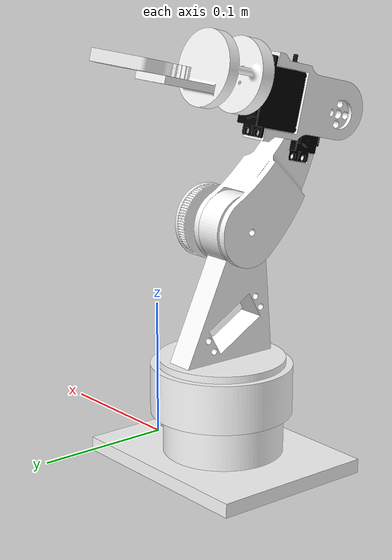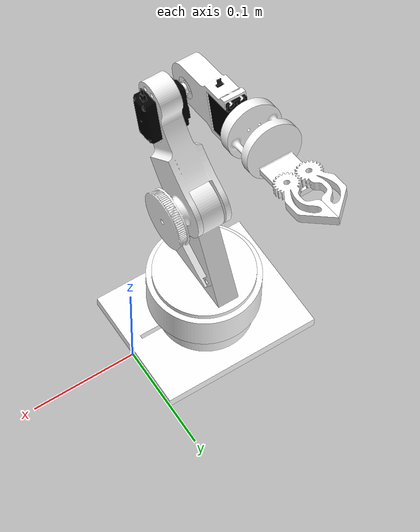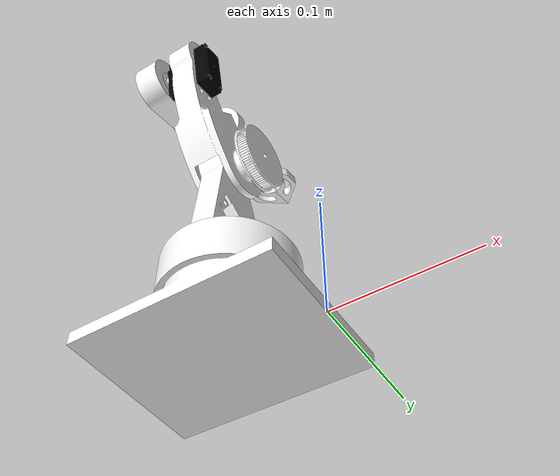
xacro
<?xml version="1.0" ?>
<robot name="picka" xmlns:xacro="http://www.ros.org/wiki/xacro">

<xacro:include filename="$(find picka_description)/urdf/materials.xacro" />
<xacro:include filename="$(find picka_description)/urdf/picka.ros2control" />
<xacro:include filename="$(find picka_description)/urdf/picka.gazebo" />

<!-- Gazebo treats this root link as the fixed mounting frame. -->
<link name="world"/>

<link name="base_link">
  <inertial>
    <origin xyz="-0.07600828126224177 -1.1028484547273465e-17 0.030513561198824268" rpy="0 0 0"/>
    <mass value="1.6184302970897686"/>
    <inertia ixx="0.002199" iyy="0.003083" izz="0.004833" ixy="-0.0" iyz="-0.0" ixz="-7e-06"/>
  </inertial>
  <visual>
    <origin xyz="0 0 0" rpy="0 0 0"/>
    <geometry>
      <mesh filename="package://picka_description/meshes/base_link.stl" scale="0.001 0.001 0.001"/>
    </geometry>
    <material name="white"/>
  </visual>
  <collision>
    <origin xyz="-0.075000 0 0.044055" rpy="0 0 0"/>
    <geometry>
      <box size="0.150000 0.120000 0.048110"/>
    </geometry>
  </collision>
</link>

<link name="stepper_1">
  <inertial>
    <origin xyz="0.00013214863232474672 2.2369005281418757e-08 0.0237707738780129" rpy="0 0 0"/>
    <mass value="0.640145595765002"/>
    <inertia ixx="0.000213" iyy="0.000214" izz="0.000178" ixy="-0.0" iyz="-0.0" ixz="2e-06"/>
  </inertial>
  <visual>
    <origin xyz="0.073 -0.0 -0.0211" rpy="0 0 0"/>
    <geometry>
      <mesh filename="package://picka_description/meshes/stepper_1.stl" scale="0.001 0.001 0.001"/>
    </geometry>
    <material name="black"/>
  </visual>
  <collision>
    <origin xyz="0.003100 0 0.033750" rpy="0 0 0"/>
    <geometry>
      <box size="0.048400 0.042200 0.067500"/>
    </geometry>
  </collision>
</link>

<link name="shoulder_1">
  <inertial>
    <origin xyz="-3.509113913983952e-05 -0.006280453652184013 0.0452397185954387" rpy="0 0 0"/>
    <mass value="0.9843584714949085"/>
    <inertia ixx="0.001813" iyy="0.001608" izz="0.000505" ixy="0.0" iyz="0.000183" ixz="-1e-06"/>
  </inertial>
  <visual>
    <origin xyz="0.073 -0.0 -0.0936" rpy="0 0 0"/>
    <geometry>
      <mesh filename="package://picka_description/meshes/shoulder_1.stl" scale="0.001 0.001 0.001"/>
    </geometry>
    <material name="white"/>
  </visual>
  <collision>
    <origin xyz="0 0 0.060000" rpy="0 0 0"/>
    <geometry>
      <box size="0.090000 0.089945 0.119999"/>
    </geometry>
  </collision>
</link>

<link name="backarm_1">
  <inertial>
    <origin xyz="-0.0068261814156114625 -0.023017959996843865 0.024155379857349113" rpy="0 0 0"/>
    <mass value="1.4765773134392393"/>
    <inertia ixx="0.001881" iyy="0.001407" izz="0.001004" ixy="-0.000139" iyz="0.000657" ixz="0.000145"/>
  </inertial>
  <visual>
    <origin xyz="0.063 0.012153 -0.1886" rpy="0 0 0"/>
    <geometry>
      <mesh filename="package://picka_description/meshes/backarm_1.stl" scale="0.001 0.001 0.001"/>
    </geometry>
    <material name="white"/>
  </visual>
  <collision>
    <origin xyz="-0.001363 -0.023909 0.036920" rpy="0 0 0"/>
    <geometry>
      <box size="0.051274 0.100254 0.126103"/>
    </geometry>
  </collision>
</link>

<link name="forearm_servo_1">
  <inertial>
    <origin xyz="0.07542497257237987 0.0024564923108638115 -0.19079005842647173" rpy="0 0 0"/>
    <mass value="0.24393896928790093"/>
    <inertia ixx="4.2e-05" iyy="6.2e-05" izz="3.9e-05" ixy="0.0" iyz="6e-06" ixz="0.0"/>
  </inertial>
  <visual>
    <origin xyz="0.148 0.067592 -0.448173" rpy="0 0 0"/>
    <geometry>
      <mesh filename="package://picka_description/meshes/forearm_servo_1.stl" scale="0.001 0.001 0.001"/>
    </geometry>
    <material name="black"/>
  </visual>
  <collision>
    <origin xyz="0.072664 0.002560 -0.189830" rpy="0 0 0"/>
    <geometry>
      <box size="0.044551 0.030195 0.058513"/>
    </geometry>
  </collision>
</link>

<link name="forearm_horn_1">
  <inertial>
    <origin xyz="0.00031214928703186817 -1.80489200271583e-06 -6.734333586888575e-07" rpy="0 0 0"/>
    <mass value="0.005099610361289279"/>
    <inertia ixx="3.400760316e-07" iyy="1.788701865e-07" izz="1.789721940e-07" ixy="0.0" iyz="0.0" ixz="0.0"/>
  </inertial>
  <visual>
    <origin xyz="0.097599 0.067399 -0.26698" rpy="0 0 0"/>
    <geometry>
      <mesh filename="package://picka_description/meshes/forearm_horn_1.stl" scale="0.001 0.001 0.001"/>
    </geometry>
    <material name="white"/>
  </visual>
  <collision>
    <origin xyz="0.001236 -0.000002 -0.000001" rpy="0 0 0"/>
    <geometry>
      <box size="0.004572 0.020006 0.020000"/>
    </geometry>
  </collision>
</link>

<link name="forearm_1">
  <inertial>
    <origin xyz="-0.0077310757581627865 0.014783962849126614 0.006712029893361671" rpy="0 0 0"/>
    <mass value="0.35436967779806794"/>
    <inertia ixx="0.000203" iyy="8.1e-05" izz="0.000145" ixy="-0.0" iyz="-1.8e-05" ixz="0.0"/>
  </inertial>
  <visual>
    <origin xyz="0.098599 0.067394 -0.266981" rpy="0 0 0"/>
    <geometry>
      <mesh filename="package://picka_description/meshes/forearm_1.stl" scale="0.001 0.001 0.001"/>
    </geometry>
    <material name="white"/>
  </visual>
  <collision>
    <origin xyz="-0.007787 0.024534 0.014528" rpy="0 0 0"/>
    <geometry>
      <box size="0.020425 0.090178 0.063884"/>
    </geometry>
  </collision>
</link>

<link name="wrist_servo_1">
  <inertial>
    <origin xyz="9.703710668790277e-05 0.018843304838399556 0.004925875307550398" rpy="0 0 0"/>
    <mass value="0.24393896928790093"/>
    <inertia ixx="6.4e-05" iyy="4.2e-05" izz="3.8e-05" ixy="-0.0" iyz="1e-06" ixz="-0.0"/>
  </inertial>
  <visual>
    <origin xyz="0.106316 0.03239 -0.27801" rpy="0 0 0"/>
    <geometry>
      <mesh filename="package://picka_description/meshes/wrist_servo_1.stl" scale="0.001 0.001 0.001"/>
    </geometry>
    <material name="black"/>
  </visual>
  <collision>
    <origin xyz="0.000025 0.018567 0.007191" rpy="0 0 0"/>
    <geometry>
      <box size="0.020025 0.046023 0.053007"/>
    </geometry>
  </collision>
</link>

<link name="wrist_horn_1">
  <inertial>
    <origin xyz="-1.3954395602921998e-06 -0.00030311281448825236 -7.53022390672653e-05" rpy="0 0 0"/>
    <mass value="0.005099610361289279"/>
    <inertia ixx="1.944702312e-07" iyy="3.382793386e-07" izz="1.965049757e-07" ixy="0.0" iyz="0.0" ixz="0.0"/>
  </inertial>
  <visual>
    <origin xyz="0.106094 -0.008349 -0.298556" rpy="0 0 0"/>
    <geometry>
      <mesh filename="package://picka_description/meshes/wrist_horn_1.stl" scale="0.001 0.001 0.001"/>
    </geometry>
    <material name="white"/>
  </visual>
  <collision>
    <origin xyz="0 -0.000547 0" rpy="0 0 0"/>
    <geometry>
      <box size="0.020010 0.007874 0.019890"/>
    </geometry>
  </collision>
</link>

<link name="wrist_1">
  <inertial>
    <origin xyz="0.00010947347127863993 0.021543238113941238 0.003562231696321305" rpy="0 0 0"/>
    <mass value="0.3250047398469607"/>
    <inertia ixx="0.000174" iyy="9.4e-05" izz="0.000178" ixy="-0.0" iyz="-1e-06" ixz="0.0"/>
  </inertial>
  <visual>
    <origin xyz="0.106089 -0.009319 -0.298798" rpy="0 0 0"/>
    <geometry>
      <mesh filename="package://picka_description/meshes/wrist_1.stl" scale="0.001 0.001 0.001"/>
    </geometry>
    <material name="white"/>
  </visual>
  <collision>
    <origin xyz="0.000085 0.034621 0.004089" rpy="0 0 0"/>
    <geometry>
      <box size="0.050169 0.085409 0.057686"/>
    </geometry>
  </collision>
</link>

<link name="right_gripper_1">
  <inertial>
    <origin xyz="0.0007000144290990606 0.01647211065136825 0.008229928153043464" rpy="0 0 0"/>
    <mass value="0.04573780851018126"/>
    <inertia ixx="1.5e-05" iyy="3e-06" izz="1.5e-05" ixy="1e-06" iyz="-3e-06" ixz="0.0"/>
  </inertial>
  <visual>
    <origin xyz="0.095715 -0.077566 -0.305597" rpy="0 0 0"/>
    <geometry>
      <mesh filename="package://picka_description/meshes/right_gripper_1.stl" scale="0.001 0.001 0.001"/>
    </geometry>
    <material name="white"/>
  </visual>
  <collision>
    <origin xyz="0.000790 0.020403 0.009210" rpy="0 0 0"/>
    <geometry>
      <box size="0.023580 0.066023 0.023741"/>
    </geometry>
  </collision>
</link>

<link name="left_gripper_1">
  <inertial>
    <origin xyz="-0.000568772523196967 0.016234344884142007 0.00817057661094861" rpy="0 0 0"/>
    <mass value="0.04681081227386463"/>
    <inertia ixx="1.4e-05" iyy="3e-06" izz="1.5e-05" ixy="-1e-06" iyz="-3e-06" ixz="-0.0"/>
  </inertial>
  <visual>
    <origin xyz="0.115925 -0.07767 -0.305623" rpy="0 0 0"/>
    <geometry>
      <mesh filename="package://picka_description/meshes/left_gripper_1.stl" scale="0.001 0.001 0.001"/>
    </geometry>
    <material name="white"/>
  </visual>
  <collision>
    <origin xyz="-0.000951 0.020398 0.009209" rpy="0 0 0"/>
    <geometry>
      <box size="0.023741 0.065859 0.023700"/>
    </geometry>
  </collision>
</link>

<link name="bracket_1">
  <inertial>
    <origin xyz="6.661338147750939e-16 4.861780449086804e-07 -0.005999721734492688" rpy="0 0 0"/>
    <mass value="0.6175977354191365"/>
    <inertia ixx="0.000589" iyy="0.000589" izz="0.001042" ixy="0.0" iyz="0.0" ixz="0.0"/>
  </inertial>
  <visual>
    <origin xyz="0.073 -0.0 -0.0886" rpy="0 0 0"/>
    <geometry>
      <mesh filename="package://picka_description/meshes/bracket_1.stl" scale="0.001 0.001 0.001"/>
    </geometry>
    <material name="white"/>
  </visual>
  <collision>
    <origin xyz="0 0 -0.012500" rpy="0 0 0"/>
    <geometry>
      <box size="0.100000 0.100000 0.035000"/>
    </geometry>
  </collision>
</link>

<joint name="world_fixed_joint" type="fixed">
  <!-- The original CAD mesh bottom is 0.02 m above base_link. -->
  <origin xyz="0 0 -0.02" rpy="0 0 0"/>
  <parent link="world"/>
  <child link="base_link"/>
</joint>

<joint name="base_to_stepper_joint" type="fixed">
  <origin xyz="-0.073 0.0 0.0211" rpy="0 0 0"/>
  <parent link="base_link"/>
  <child link="stepper_1"/>
</joint>

<joint name="bracket_to_shoulder_joint" type="fixed">
  <origin xyz="0.0 0.0 0.005" rpy="0 0 0"/>
  <parent link="bracket_1"/>
  <child link="shoulder_1"/>
</joint>

<joint name="shoulder_joint" type="revolute">
  <origin xyz="0.01 -0.012153 0.095" rpy="0 0 0"/>
  <parent link="shoulder_1"/>
  <child link="backarm_1"/>
  <axis xyz="-1.0 0.0 0.0"/>
  <limit upper="1.570796" lower="-0.785398" effort="100" velocity="1.5"/>
  <dynamics damping="0.20" friction="0.05"/>
</joint>

<joint name="backarm_to_forearm_servo_joint" type="fixed">
  <origin xyz="-0.085 -0.055439 0.259573" rpy="0 0 0"/>
  <parent link="backarm_1"/>
  <child link="forearm_servo_1"/>
</joint>

<joint name="elbow_joint" type="revolute">
  <origin xyz="0.050401 0.000193 -0.181193" rpy="0 0 0"/>
  <parent link="forearm_servo_1"/>
  <child link="forearm_horn_1"/>
  <axis xyz="1 0 0"/>
  <limit upper="2.094395" lower="-0.087266" effort="100" velocity="1.5"/>
  <dynamics damping="0.20" friction="0.05"/>
</joint>

<joint name="elbow_horn_to_forearm_joint" type="fixed">
  <origin xyz="-0.001 5e-06 1e-06" rpy="0 0 0"/>
  <parent link="forearm_horn_1"/>
  <child link="forearm_1"/>
</joint>

<joint name="forearm_to_wrist_servo_joint" type="fixed">
  <origin xyz="-0.007717 0.035004 0.011029" rpy="0 0 0"/>
  <parent link="forearm_1"/>
  <child link="wrist_servo_1"/>
</joint>

<joint name="wrist_joint" type="revolute">
  <origin xyz="0.000222 0.040739 0.020546" rpy="0 0 0"/>
  <parent link="wrist_servo_1"/>
  <child link="wrist_horn_1"/>
  <axis xyz="-0.005 -0.970284 -0.241919"/>
  <limit upper="1.396263" lower="-1.396263" effort="100" velocity="1.5"/>
  <dynamics damping="0.15" friction="0.04"/>
</joint>

<joint name="wrist_horn_to_wrist_joint" type="fixed">
  <origin xyz="5e-06 0.00097 0.000242" rpy="0 0 0"/>
  <parent link="wrist_horn_1"/>
  <child link="wrist_1"/>
</joint>

<joint name="right_gripper_joint" type="revolute">
  <origin xyz="0.010374 0.068247 0.006799" rpy="0 0 0"/>
  <parent link="wrist_1"/>
  <child link="right_gripper_1"/>
  <axis xyz="0.0 0.241922 -0.970296"/>
  <limit upper="0.523599" lower="0.0" effort="100" velocity="2.0"/>
  <dynamics damping="0.05" friction="0.02"/>
</joint>

<joint name="left_gripper_joint" type="revolute">
  <origin xyz="-0.009836 0.068351 0.006825" rpy="0 0 0"/>
  <parent link="wrist_1"/>
  <child link="left_gripper_1"/>
  <axis xyz="0.0 0.241922 -0.970296"/>
  <limit upper="0.0" lower="-0.523599" effort="100" velocity="2.0"/>
  <mimic joint="right_gripper_joint" multiplier="-1.0" offset="0.0"/>
  <dynamics damping="0.05" friction="0.02"/>
</joint>

<joint name="base_joint" type="revolute">
  <origin xyz="0.0 0.0 0.0675" rpy="0 0 0"/>
  <parent link="stepper_1"/>
  <child link="bracket_1"/>
  <axis xyz="0.0 0.0 1.0"/>
  <limit upper="2.792527" lower="-2.792527" effort="100" velocity="1.0"/>
  <dynamics damping="0.25" friction="0.08"/>
</joint>

</robot>

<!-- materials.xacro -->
<robot name="picka" xmlns:xacro="http://www.ros.org/wiki/xacro" >

<material name="white">
  <color rgba="1 1 1 1"/>
</material>
<material name = "black">
  <color rgba="0 0 0 1"/>
</material>

</robot>
